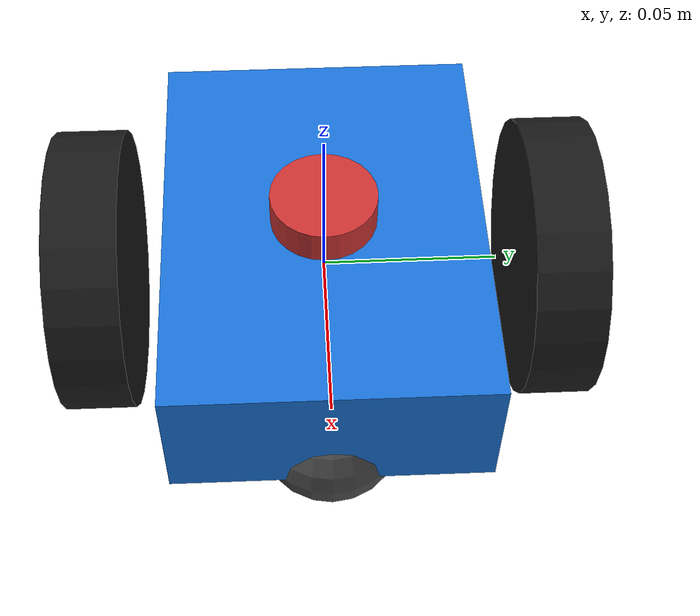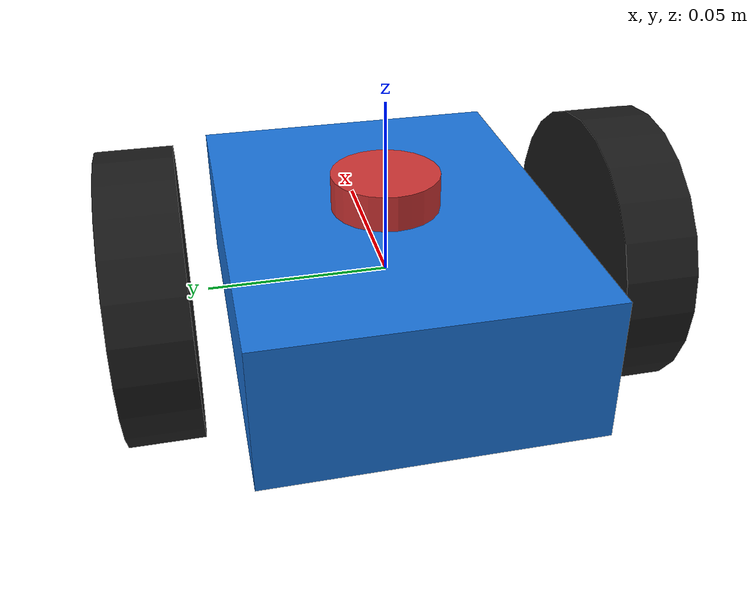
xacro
<?xml version="1.0"?>
<robot name="micromouse" xmlns:xacro="http://www.ros.org/wiki/xacro">

  <!-- A small differential-drive robot sized to fit a 0.30 m maze cell.
       wheel_radius=0.04, wheel_separation=0.13. Spawn at z=0.04 so the
       wheels rest on the ground. -->

  <xacro:arg name="use_lidar" default="false"/>

  <link name="base_link">
    <visual>
      <geometry><box size="0.12 0.09 0.04"/></geometry>
      <material name="body"><color rgba="0.10 0.45 0.85 1"/></material>
    </visual>
    <collision>
      <geometry><box size="0.12 0.09 0.04"/></geometry>
    </collision>
    <inertial>
      <mass value="0.6"/>
      <inertia ixx="0.000485" ixy="0" ixz="0"
               iyy="0.0008" iyz="0" izz="0.001125"/>
    </inertial>
  </link>

  <!-- left wheel (+y) -->
  <link name="left_wheel">
    <visual>
      <origin rpy="1.5708 0 0" xyz="0 0 0"/>
      <geometry><cylinder length="0.02" radius="0.04"/></geometry>
      <material name="wheel"><color rgba="0.1 0.1 0.1 1"/></material>
    </visual>
    <collision>
      <origin rpy="1.5708 0 0" xyz="0 0 0"/>
      <geometry><cylinder length="0.02" radius="0.04"/></geometry>
    </collision>
    <inertial>
      <mass value="0.05"/>
      <inertia ixx="0.000022" ixy="0" ixz="0"
               iyy="0.00004" iyz="0" izz="0.000022"/>
    </inertial>
  </link>
  <joint name="left_wheel_joint" type="continuous">
    <parent link="base_link"/>
    <child link="left_wheel"/>
    <origin xyz="0 0.065 0" rpy="0 0 0"/>
    <axis xyz="0 1 0"/>
  </joint>

  <!-- right wheel (-y) -->
  <link name="right_wheel">
    <visual>
      <origin rpy="1.5708 0 0" xyz="0 0 0"/>
      <geometry><cylinder length="0.02" radius="0.04"/></geometry>
      <material name="wheel"><color rgba="0.1 0.1 0.1 1"/></material>
    </visual>
    <collision>
      <origin rpy="1.5708 0 0" xyz="0 0 0"/>
      <geometry><cylinder length="0.02" radius="0.04"/></geometry>
    </collision>
    <inertial>
      <mass value="0.05"/>
      <inertia ixx="0.000022" ixy="0" ixz="0"
               iyy="0.00004" iyz="0" izz="0.000022"/>
    </inertial>
  </link>
  <joint name="right_wheel_joint" type="continuous">
    <parent link="base_link"/>
    <child link="right_wheel"/>
    <origin xyz="0 -0.065 0" rpy="0 0 0"/>
    <axis xyz="0 1 0"/>
  </joint>

  <!-- front caster (frictionless ball) -->
  <link name="caster">
    <visual>
      <geometry><sphere radius="0.02"/></geometry>
      <material name="caster"><color rgba="0.3 0.3 0.3 1"/></material>
    </visual>
    <collision>
      <geometry><sphere radius="0.02"/></geometry>
    </collision>
    <inertial>
      <mass value="0.02"/>
      <inertia ixx="0.000003" ixy="0" ixz="0"
               iyy="0.000003" iyz="0" izz="0.000003"/>
    </inertial>
  </link>
  <joint name="caster_joint" type="fixed">
    <parent link="base_link"/>
    <child link="caster"/>
    <origin xyz="0.045 0 -0.02" rpy="0 0 0"/>
  </joint>

  <!-- lidar mount (always present so TF is stable; the sensor itself is
       conditional) -->
  <link name="lidar_link">
    <visual>
      <geometry><cylinder length="0.01" radius="0.015"/></geometry>
      <material name="lidar"><color rgba="0.8 0.2 0.2 1"/></material>
    </visual>
    <inertial>
      <mass value="0.01"/>
      <inertia ixx="0.0000006" ixy="0" ixz="0"
               iyy="0.0000006" iyz="0" izz="0.0000011"/>
    </inertial>
  </link>
  <joint name="lidar_joint" type="fixed">
    <parent link="base_link"/>
    <child link="lidar_link"/>
    <origin xyz="0 0 0.025" rpy="0 0 0"/>
  </joint>

  <xacro:if value="$(arg use_lidar)">
    <gazebo reference="lidar_link">
      <sensor name="lidar" type="gpu_lidar">
        <topic>/scan</topic>
        <gz_frame_id>lidar_link</gz_frame_id>
        <update_rate>20</update_rate>
        <always_on>true</always_on>
        <visualize>false</visualize>
        <lidar>
          <scan>
            <horizontal>
              <samples>72</samples>
              <resolution>1</resolution>
              <min_angle>-3.141593</min_angle>
              <max_angle>3.141593</max_angle>
            </horizontal>
          </scan>
          <range>
            <min>0.02</min>
            <max>4.0</max>
            <resolution>0.01</resolution>
          </range>
          <noise>
            <type>gaussian</type>
            <mean>0.0</mean>
            <stddev>0.0</stddev>
          </noise>
        </lidar>
      </sensor>
    </gazebo>
  </xacro:if>

  <!-- gz friction: grippy wheels, slippery caster -->
  <gazebo reference="left_wheel">
    <mu1>1.0</mu1><mu2>1.0</mu2>
  </gazebo>
  <gazebo reference="right_wheel">
    <mu1>1.0</mu1><mu2>1.0</mu2>
  </gazebo>
  <gazebo reference="caster">
    <mu1>0.0</mu1><mu2>0.0</mu2>
  </gazebo>

  <!-- gz systems -->
  <gazebo>
    <plugin filename="gz-sim-diff-drive-system"
            name="gz::sim::systems::DiffDrive">
      <left_joint>left_wheel_joint</left_joint>
      <right_joint>right_wheel_joint</right_joint>
      <wheel_separation>0.13</wheel_separation>
      <wheel_radius>0.04</wheel_radius>
      <odom_publish_frequency>50</odom_publish_frequency>
      <topic>/cmd_vel</topic>
      <odom_topic>/odom</odom_topic>
      <tf_topic>/tf</tf_topic>
      <frame_id>odom</frame_id>
      <child_frame_id>base_link</child_frame_id>
      <max_linear_acceleration>3.0</max_linear_acceleration>
      <max_angular_acceleration>6.0</max_angular_acceleration>
    </plugin>

    <plugin filename="gz-sim-joint-state-publisher-system"
            name="gz::sim::systems::JointStatePublisher">
      <topic>/joint_states</topic>
    </plugin>
  </gazebo>

</robot>
